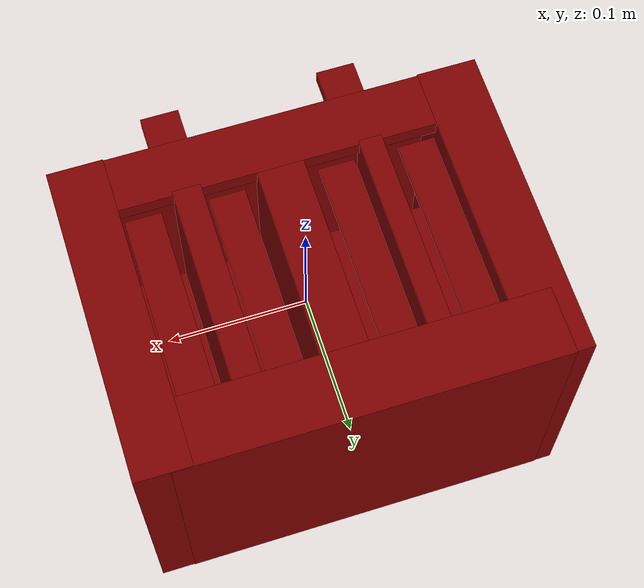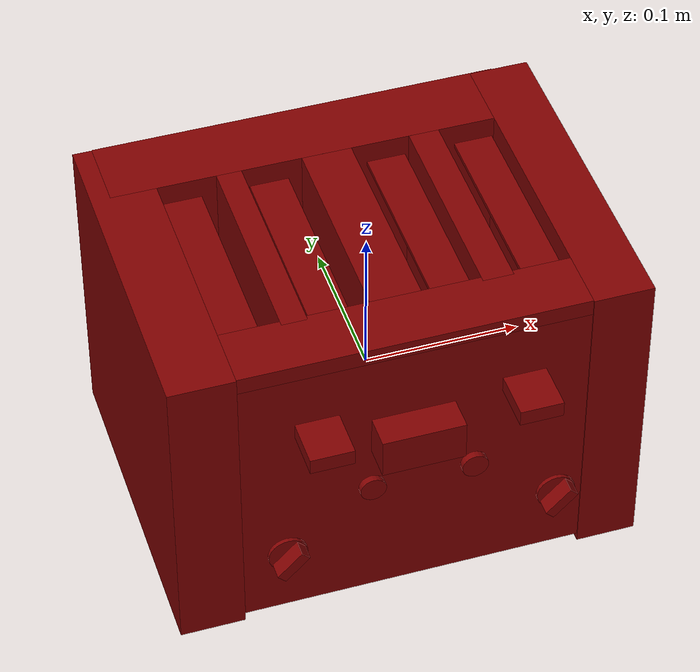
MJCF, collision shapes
<?xml version='1.0' encoding='UTF-8'?>
<mujoco model="model">
  <compiler angle="radian"/>
  <asset>
    <mesh file="visuals/Body001.obj" name="Body001_vis"/>
    <mesh file="visuals/Body002.obj" name="Body002_vis"/>
    <mesh file="visuals/Button001.obj" name="Button001_vis"/>
    <mesh file="visuals/Button002.obj" name="Button002_vis"/>
    <mesh file="visuals/Knob001.obj" name="Knob001_vis"/>
    <mesh file="visuals/Knob002.obj" name="Knob002_vis"/>
    <mesh file="visuals/Lever001.obj" name="Lever001_vis"/>
    <mesh file="visuals/Lever002.obj" name="Lever002_vis"/>
    <texture file="visuals/T_BC001.png" name="Body001_material" type="2d"/>
    <material name="Body001_material" rgba="1 1 1 1.0" texture="Body001_material" shininess="0.4472135901451111" specular="0.3103448502657381"/>
    <texture file="visuals/T_BC001.png" name="Body002_material" type="2d"/>
    <material name="Body002_material" rgba="1 1 1 1.0" texture="Body002_material" shininess="0.4472135901451111" specular="2"/>
    <texture file="visuals/T_BC001.png" name="Button001_material" type="2d"/>
    <material name="Button001_material" rgba="1 1 1 1.0" texture="Button001_material" shininess="0.4472135901451111" specular="0.3103448502657381"/>
    <texture file="visuals/T_BC001.png" name="Button002_material" type="2d"/>
    <material name="Button002_material" rgba="1 1 1 1.0" texture="Button002_material" shininess="0.4472135901451111" specular="0.3103448502657381"/>
    <texture file="visuals/T_BC001.png" name="Knob001_material" type="2d"/>
    <material name="Knob001_material" rgba="1 1 1 1.0" texture="Knob001_material" shininess="0.4472135901451111" specular="0.3103448502657381"/>
    <texture file="visuals/T_BC001.png" name="Knob002_material" type="2d"/>
    <material name="Knob002_material" rgba="1 1 1 1.0" texture="Knob002_material" shininess="0.4472135901451111" specular="0.3103448502657381"/>
    <texture file="visuals/T_BC001.png" name="Lever001_material" type="2d"/>
    <material name="Lever001_material" rgba="1 1 1 1.0" texture="Lever001_material" shininess="0.4472135901451111" specular="0.3103448502657381"/>
    <texture file="visuals/T_BC001.png" name="Lever002_material" type="2d"/>
    <material name="Lever002_material" rgba="1 1 1 1.0" texture="Lever002_material" shininess="0.4472135901451111" specular="0.3103448502657381"/>
  </asset>
  <default>
    <default class="visual">
      <geom conaffinity="0" contype="0" group="1" type="mesh"/>
    </default>
    <default class="collision">
      <geom group="0" rgba="0.5 0 0 0.5"/>
    </default>
    <default class="spawn">
      <geom group="0" rgba="1 1 1 0.5" contype="0" conaffinity="0"/>
      <site group="0" rgba="1 1 1 0.5"/>
    </default>
    <default class="region">
      <geom group="1" conaffinity="0" contype="0" rgba="0 1 0 0"/>
    </default>
  </default>
  <worldbody>
    <body>
      <body name="object">
        <geom mesh="Body001_vis" type="mesh" solimp="0.998 0.998 0.001" solref="0.001 1" density="100" friction="0.95 0.3 0.1" class="visual" material="Body001_material"/>
        <geom class="collision" type="box" pos="0.130345 0.017512 -0.001086" size="0.019284255802631378 0.11145979166030884 0.10421643406152725" quat="1.0 0.0 0.0 0.0"/>
        <geom class="collision" type="box" pos="-0.006065 0.105984 -0.001086" size="0.13173864781856537 0.023420074954628944 0.10421624779701233" quat="1.0 0.0 0.0 0.0"/>
        <geom class="collision" type="box" pos="-0.129287 0.017512 -0.001086" size="0.020824095234274864 0.11145979166030884 0.10421605408191681" quat="1.0 0.0 0.0 0.0"/>
        <geom class="collision" type="box" pos="-0.000072 -0.073367 0.097557" size="0.11785958707332611 0.019685965031385422 0.005569088272750378" quat="1.0 0.0 0.0 0.0"/>
        <geom class="collision" type="box" pos="0.000661 0.015378 0.040398" size="0.016128962859511375 0.07223571836948395 0.06272799521684647" quat="1.0 0.0 0.0 0.0"/>
        <geom class="collision" type="box" pos="0.064275 0.015378 0.040398" size="0.009770859032869339 0.07223749905824661 0.06272956728935242" quat="1.0 0.0 0.0 0.0"/>
        <geom class="collision" type="box" pos="-0.062451 0.015378 0.040398" size="0.008091136813163757 0.07223739475011826 0.06272947043180466" quat="1.0 0.0 0.0 0.0"/>
        <geom class="collision" type="box" pos="0.000361 0.014746 -0.051104" size="0.11972908675670624 0.07246486842632294 0.03131430968642235" quat="1.0 0.0 0.0 0.0"/>
        <geom class="collision" type="box" pos="-0.000215 -0.100885 0.032139" size="0.026278255507349968 0.013284342363476753 0.013284342363476753" quat="1.0 0.0 0.0 0.0"/>
        <geom class="collision" type="box" pos="-0.000072 -0.083949 -0.002704" size="0.11785958707332611 0.009103802032768726 0.09735550731420517" quat="1.0 0.0 0.0 0.0"/>
        <body name="Body002">
          <geom mesh="Body002_vis" type="mesh" solimp="0.998 0.998 0.001" solref="0.001 1" density="100" friction="0.95 0.3 0.1" class="visual" material="Body002_material"/>
        </body>
        <body name="Button001">
          <joint axis="0.0 1.0 0.0" pos="-0.021134 -0.108294 0.035890" limited="true" name="Button001_joint" range="0.0 0.0008" type="slide" damping="1" frictionloss="1" armature=".01" stiffness="0.05"/>
          <geom mesh="Button001_vis" type="mesh" solimp="0.998 0.998 0.001" solref="0.001 1" density="100" friction="0.95 0.3 0.1" class="visual" material="Button001_material"/>
          <geom class="collision" type="cylinder" pos="-0.031871 -0.112096 0.008095" size="0.00813758373260498 0.002120829187333584" quat="0.7071068286895752 0.7071067690849304 0.0 0.0"/>
        </body>
        <body name="Button002">
          <joint axis="0.0 1.0 0.0" pos="0.020412 -0.108294 0.035890" limited="true" name="Button002_joint" range="0.0 0.0008" type="slide" damping="1" frictionloss="1" armature=".01" stiffness="0.05"/>
          <geom mesh="Button002_vis" type="mesh" solimp="0.998 0.998 0.001" solref="0.001 1" density="100" friction="0.95 0.3 0.1" class="visual" material="Button002_material"/>
          <geom class="collision" type="cylinder" pos="0.032474 -0.112094 0.008095" size="0.00832111295312643 0.0022583003155887127" quat="0.7071068286895752 0.7071067690849304 0.0 0.0"/>
        </body>
        <body name="Knob001">
          <joint axis="0.0 1.0 0.0" pos="-0.086072 -0.114871 -0.029734" limited="true" name="Knob001_joint" range="0.0 4.71238898038469" type="hinge" damping="0.05" armature="0.001"/>
          <geom mesh="Knob001_vis" type="mesh" solimp="0.998 0.998 0.001" solref="0.001 1" density="100" friction="0.95 0.3 0.1" class="visual" material="Knob001_material"/>
          <geom class="collision" type="cylinder" pos="-0.086072 -0.114696 -0.029678" size="0.012285972945392132 0.001291563967242837" quat="0.7071068286895752 0.7071067690849304 0.0 0.0"/>
          <geom class="collision" type="box" pos="-0.085779 -0.120678 -0.029917" size="0.003576950402930379 0.005857677664607763 0.010966707020998001" quat="0.9256851673126221 0.0 0.37829485535621643 0.0"/>
        </body>
        <body name="Knob002">
          <joint axis="0.0 1.0 0.0" pos="0.085282 -0.114595 -0.030231" limited="true" name="Knob002_joint" range="0.0 4.71238898038469" type="hinge" damping="0.05" armature="0.001"/>
          <geom mesh="Knob002_vis" type="mesh" solimp="0.998 0.998 0.001" solref="0.001 1" density="100" friction="0.95 0.3 0.1" class="visual" material="Knob002_material"/>
          <geom class="collision" type="cylinder" pos="0.085218 -0.114446 -0.029985" size="0.012285972945392132 0.001291563967242837" quat="0.7071068286895752 0.7071067690849304 0.0 0.0"/>
          <geom class="collision" type="box" pos="0.085237 -0.120684 -0.029829" size="0.003576950402930379 0.005857677664607763 0.010966707020998001" quat="0.9256851673126221 0.0 0.37829485535621643 0.0"/>
        </body>
        <body name="Lever001">
          <joint axis="0.046992458403110504 -0.07976647466421127 -0.9957053065299988" pos="-0.064067 -0.119763 0.064499" limited="true" name="Lever001_joint" range="0.0 0.1" type="slide" damping="1" frictionloss="1" armature=".01" stiffness="1" springref="-0.8"/>
          <geom mesh="Lever001_vis" type="mesh" solimp="0.998 0.998 0.001" solref="0.001 1" density="100" friction="0.95 0.3 0.1" class="visual" material="Lever001_material"/>
          <geom class="collision" type="box" pos="-0.064262 -0.121561 0.064872" size="0.013665889389812946 0.015225023031234741 0.005130822770297527" quat="1.0 0.0 0.0 0.0" name="sideL_lever_knob"/>
          <geom class="collision" type="box" pos="-0.093339 0.014861 0.089687" size="0.012550000101327896 0.06549999862909317 0.0013252489734441042" quat="1.0 0.0 0.0 0.0" name="sideL_slotL_floor"/>
          <geom class="collision" type="box" pos="-0.037456 0.014861 0.089687" size="0.012550000101327896 0.06549999862909317 0.0013252489734441042" quat="1.0 0.0 0.0 0.0" name="sideL_slotR_floor"/>
        </body>
        <body name="Lever002">
          <joint axis="-0.06437166780233383 -0.07758398354053497 -0.9949054718017578" pos="0.064102 -0.119763 0.064177" limited="true" name="Lever002_joint" range="0.0 0.1" type="slide" damping="1" frictionloss="1" armature=".01" stiffness="1" springref="-0.8"/>
          <geom mesh="Lever002_vis" type="mesh" solimp="0.998 0.998 0.001" solref="0.001 1" density="100" friction="0.95 0.3 0.1" class="visual" material="Lever002_material"/>
          <geom class="collision" type="box" pos="0.064172 -0.121561 0.064770" size="0.013591578230261803 0.015224780887365341 0.00513067189604044" quat="1.0 0.0 0.0 0.0" name="sideR_lever_knob"/>
          <geom class="collision" type="box" pos="0.038872 0.014861 0.089687" size="0.012550000101327896 0.06549999862909317 0.0013252489734441042" quat="1.0 0.0 0.0 0.0" name="sideR_slotL_floor"/>
          <geom class="collision" type="box" pos="0.096500 0.014861 0.089687" size="0.012550000101327896 0.06549999862909317 0.0013252455973997712" quat="1.0 0.0 0.0 0.0" name="sideR_slotR_floor"/>
        </body>
        <geom class="region" name="reg_main" type="box" pos="-5.000000000005e-07 0.012798500000000004 0.0" size="0.1524415 0.1253645 0.103422"/>
      </body>
    </body>
  </worldbody>
  <actuator>
    <motor name="Button001_joint_actuator" joint="Button001_joint" gear="0.5"/>
    <motor name="Button002_joint_actuator" joint="Button002_joint" gear="0.5"/>
    <motor name="Knob001_joint_actuator" joint="Knob001_joint" gear="5"/>
    <motor name="Knob002_joint_actuator" joint="Knob002_joint" gear="5"/>
    <motor name="Lever001_joint_actuator" joint="Lever001_joint" gear="5"/>
    <motor name="Lever002_joint_actuator" joint="Lever002_joint" gear="5"/>
  </actuator>
</mujoco>
